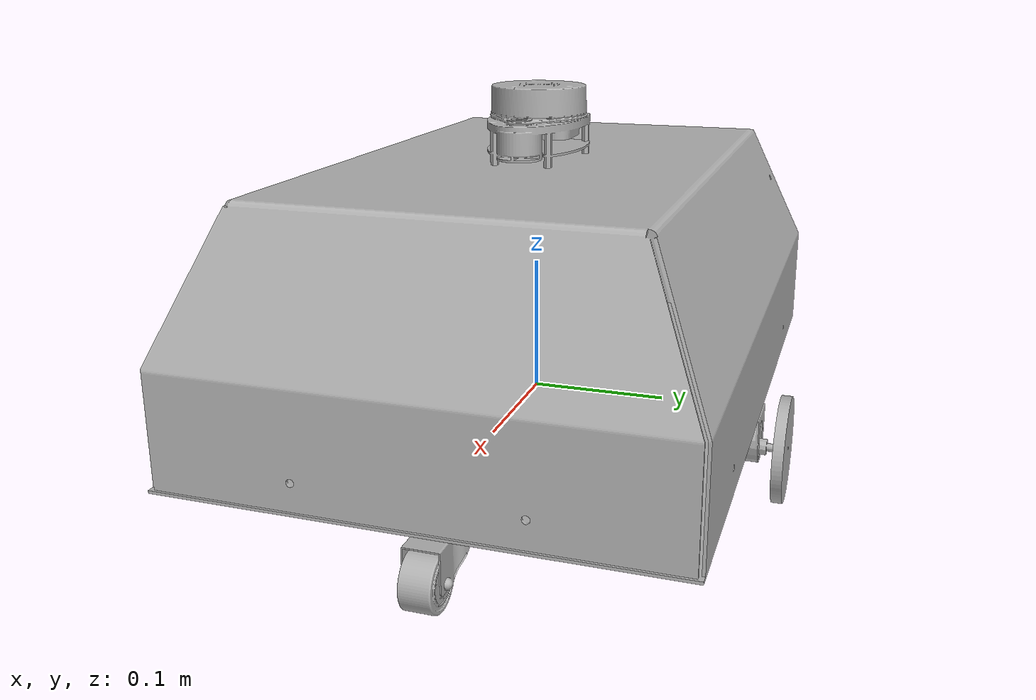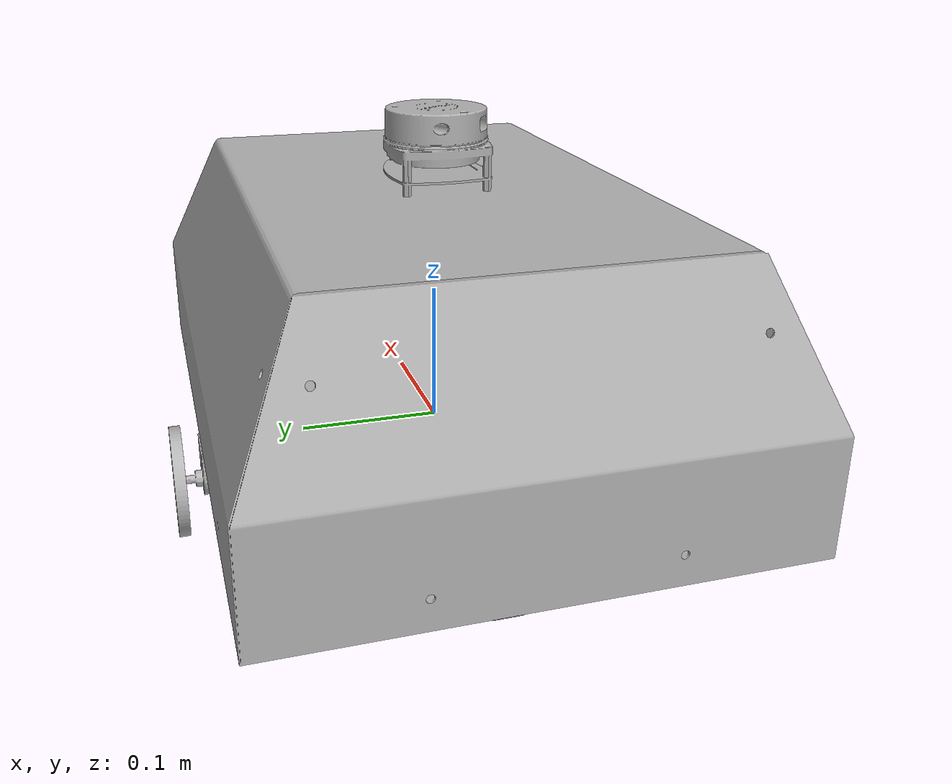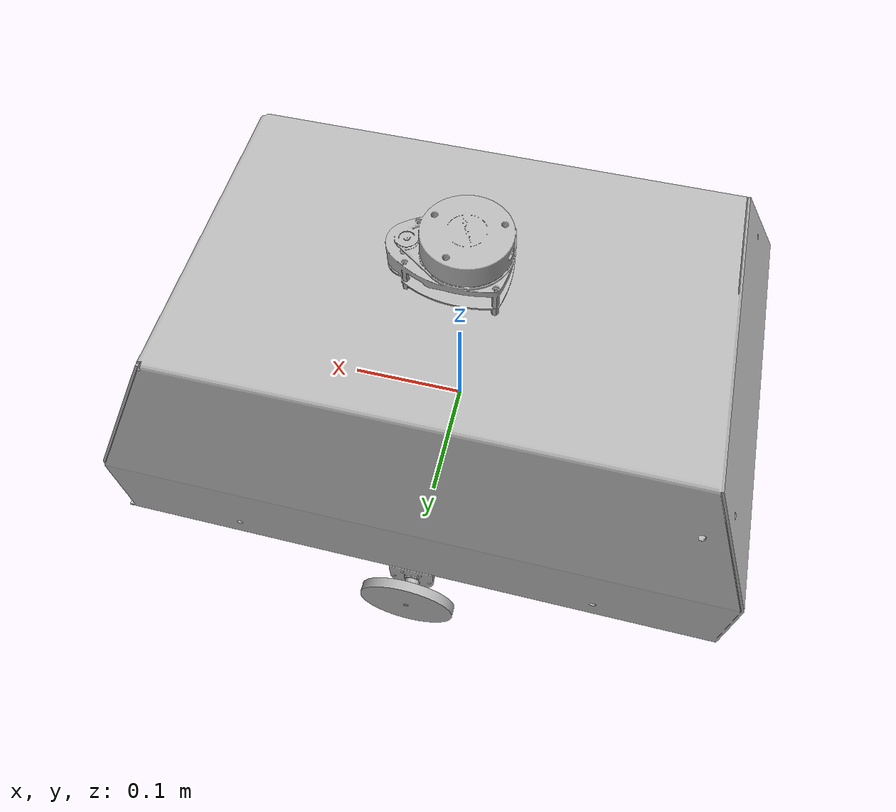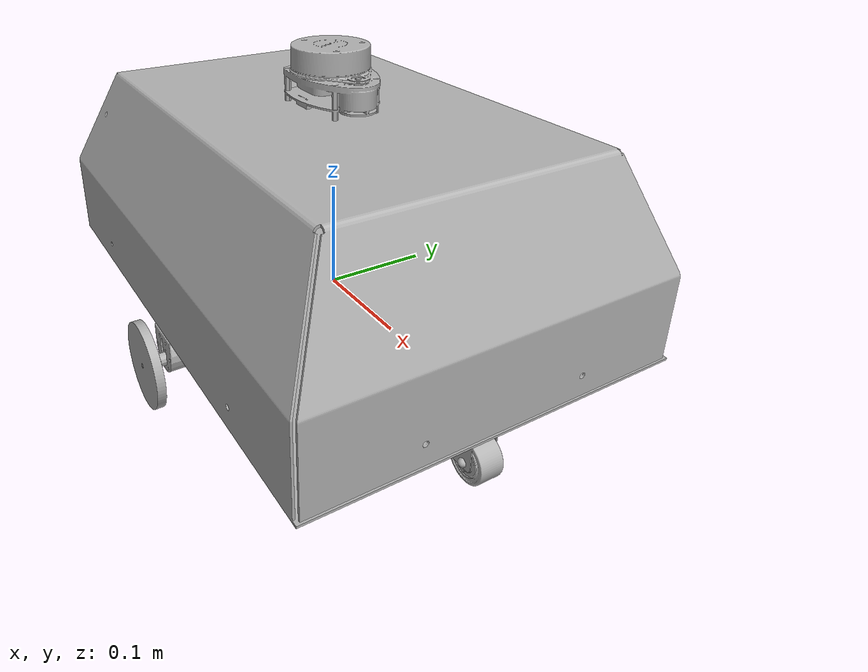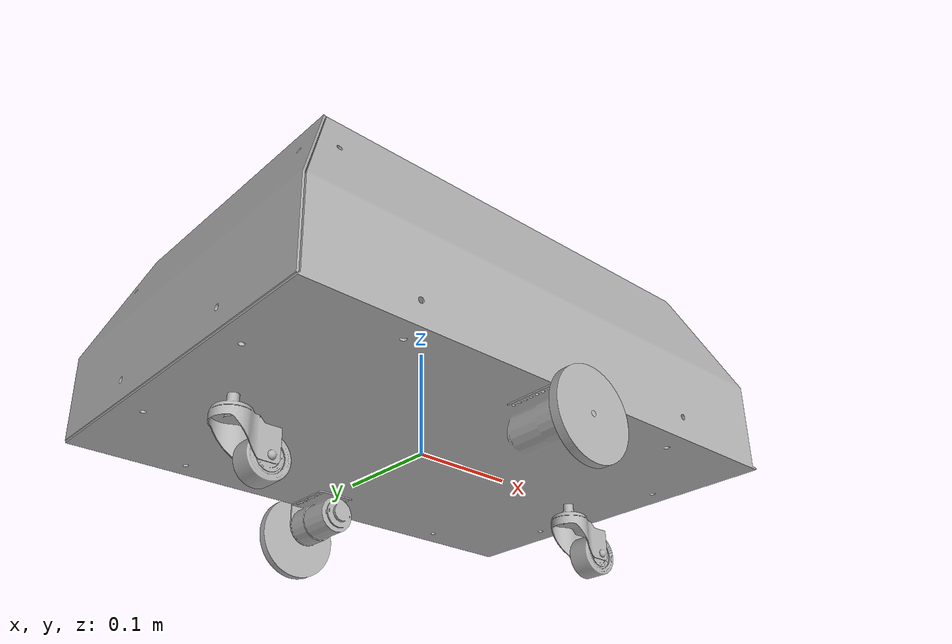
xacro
<?xml version="1.0" ?>
<robot name="caba" xmlns:xacro="http://www.ros.org/wiki/xacro">

<xacro:include filename="$(find caba_description)/urdf/materials.xacro" />
<xacro:include filename="$(find caba_description)/urdf/caba.trans" />
<xacro:include filename="$(find caba_description)/urdf/caba.gazebo" />

<link name="base_link">
  <inertial>
    <origin rpy="0 0 0" xyz="-0.0011847288991747743 7.185810134250719e-11 0.06883632762905934"/>
    <mass value="9.999263199204597"/>
    <inertia ixx="0.203031" ixy="1e-05" ixz="0.000313" iyy="0.297481" iyz="0.0" izz="0.391257"/>
  </inertial>
  <visual>
    <origin rpy="0 0 0" xyz="0 0 0"/>
    <geometry>
      <mesh filename="package://caba_description/meshes/base_link.stl" scale="0.001 0.001 0.001"/>
    </geometry>
    <material name="silver"/>
  </visual>
  <collision>
    <origin rpy="0 0 0" xyz="0 0 0"/>
    <geometry>
      <mesh filename="package://caba_description/meshes/base_link.stl" scale="0.001 0.001 0.001"/>
    </geometry>
  </collision>
</link>

<link name="right_wheel_1">
  <inertial>
    <origin rpy="0 0 0" xyz="2.2861500076694515e-07 0.0040000000000000036 -3.2082938715427556e-08"/>
    <mass value="0.03725143488994098"/>
    <inertia ixx="1.5e-05" ixy="-0.0" ixz="0.0" iyy="3e-05" iyz="0.0" izz="1.5e-05"/>
  </inertial>
  <visual>
    <origin rpy="0 0 0" xyz="-8.5e-05 0.1965 0.029407"/>
    <geometry>
      <mesh filename="package://caba_description/meshes/right_wheel_1.stl" scale="0.001 0.001 0.001"/>
    </geometry>
    <material name="silver"/>
  </visual>
  <collision>
    <origin rpy="0 0 0" xyz="-8.5e-05 0.1965 0.029407"/>
    <geometry>
      <mesh filename="package://caba_description/meshes/right_wheel_1.stl" scale="0.001 0.001 0.001"/>
    </geometry>
  </collision>
</link>

<link name="left_wheel_1">
  <inertial>
    <origin rpy="0 0 0" xyz="-2.2861500079528348e-07 -0.003999999999999976 -3.208293869808032e-08"/>
    <mass value="0.037251434889940996"/>
    <inertia ixx="1.5e-05" ixy="0.0" ixz="0.0" iyy="3e-05" iyz="0.0" izz="1.5e-05"/>
  </inertial>
  <visual>
    <origin rpy="0 0 0" xyz="8.5e-05 -0.1965 0.029407"/>
    <geometry>
      <mesh filename="package://caba_description/meshes/left_wheel_1.stl" scale="0.001 0.001 0.001"/>
    </geometry>
    <material name="silver"/>
  </visual>
  <collision>
    <origin rpy="0 0 0" xyz="8.5e-05 -0.1965 0.029407"/>
    <geometry>
      <mesh filename="package://caba_description/meshes/left_wheel_1.stl" scale="0.001 0.001 0.001"/>
    </geometry>
  </collision>
</link>

<link name="laser">
  <inertial>
    <origin rpy="0 0 0" xyz="0.006854802401513253 -0.0010802476481471532 0.026568901965641684"/>
    <mass value="0.11522595365537097"/>
    <inertia ixx="5.3e-05" ixy="-1e-06" ixz="1.3e-05" iyy="9.5e-05" iyz="1e-06" izz="0.000111"/>
  </inertial>
  <visual>
    <origin rpy="0 0 0" xyz="0.001655 -0.0 -0.179"/>
    <geometry>
      <mesh filename="package://caba_description/meshes/rplidar_1.stl" scale="0.001 0.001 0.001"/>
    </geometry>
    <material name="silver"/>
  </visual>
  <collision>
    <origin rpy="0 0 0" xyz="0.001655 -0.0 -0.179"/>
    <geometry>
      <mesh filename="package://caba_description/meshes/rplidar_1.stl" scale="0.001 0.001 0.001"/>
    </geometry>
  </collision>
</link>

<link name="front_caster_tire_1">
  <inertial>
    <origin rpy="0 0 0" xyz="0.0438567830429589 0.006514756553844138 -0.07349107828745045"/>
    <mass value="0.019114076713434056"/>
    <inertia ixx="5.7e-05" ixy="0.0" ixz="-0.0" iyy="2.3e-05" iyz="0.0" izz="6.3e-05"/>
  </inertial>
  <visual>
    <origin rpy="0 0 0" xyz="-0.221938 -0.011 0.0495"/>
    <geometry>
      <mesh filename="package://caba_description/meshes/front_caster_tire_1.stl" scale="0.001 0.001 0.001"/>
    </geometry>
    <material name="silver"/>
  </visual>
  <collision>
    <origin rpy="0 0 0" xyz="-0.221938 -0.011 0.0495"/>
    <geometry>
      <mesh filename="package://caba_description/meshes/front_caster_tire_1.stl" scale="0.001 0.001 0.001"/>
    </geometry>
  </collision>
</link>

<link name="front_caster_body_1">
  <inertial>
    <origin rpy="0 0 0" xyz="-0.191795 0.0 0.002"/>
    <mass value="0.1"/>
    <inertia ixx="0.0" ixy="0.0" ixz="0.0" iyy="0.0" iyz="0.0" izz="0.0"/>
  </inertial>
  <visual>
    <origin rpy="0 0 0" xyz="-0.191795 -0.0 0.002"/>
    <geometry>
      <mesh filename="package://caba_description/meshes/front_caster_body_1.stl" scale="0.001 0.001 0.001"/>
    </geometry>
    <material name="silver"/>
  </visual>
  <collision>
    <origin rpy="0 0 0" xyz="-0.191795 -0.0 0.002"/>
    <geometry>
      <mesh filename="package://caba_description/meshes/front_caster_body_1.stl" scale="0.001 0.001 0.001"/>
    </geometry>
  </collision>
</link>

<link name="rear_caster_body_1">
  <inertial>
    <origin rpy="0 0 0" xyz="0.201795 0.0 0.002"/>
    <mass value="0.1"/>
    <inertia ixx="0.0" ixy="0.0" ixz="0.0" iyy="0.0" iyz="0.0" izz="0.0"/>
  </inertial>
  <visual>
    <origin rpy="0 0 0" xyz="0.201795 -0.0 0.002"/>
    <geometry>
      <mesh filename="package://caba_description/meshes/rear_caster_body_1.stl" scale="0.001 0.001 0.001"/>
    </geometry>
    <material name="silver"/>
  </visual>
  <collision>
    <origin rpy="0 0 0" xyz="0.201795 -0.0 0.002"/>
    <geometry>
      <mesh filename="package://caba_description/meshes/rear_caster_body_1.stl" scale="0.001 0.001 0.001"/>
    </geometry>
  </collision>
</link>

<link name="rear_caster_tire_1">
  <inertial>
    <origin rpy="0 0 0" xyz="6.873565389642344e-07 -0.010500244051253481 -7.813111250337679e-08"/>
    <mass value="0.019114076713376713"/>
    <inertia ixx="5.7e-05" ixy="0.0" ixz="0.0" iyy="2.3e-05" iyz="-0.0" izz="6.3e-05"/>
  </inertial>
  <visual>
    <origin rpy="0 0 0" xyz="0.171738 -0.011 0.0495"/>
    <geometry>
      <mesh filename="package://caba_description/meshes/rear_caster_tire_1.stl" scale="0.001 0.001 0.001"/>
    </geometry>
    <material name="silver"/>
  </visual>
  <collision>
    <origin rpy="0 0 0" xyz="0.171738 -0.011 0.0495"/>
    <geometry>
      <mesh filename="package://caba_description/meshes/rear_caster_tire_1.stl" scale="0.001 0.001 0.001"/>
    </geometry>
  </collision>
</link>

<joint name="right_wheel_joint" type="continuous">
  <origin rpy="0 0 0" xyz="8.5e-05 -0.1965 -0.029407"/>
  <parent link="base_link"/>
  <child link="right_wheel_1"/>
  <axis xyz="0.0 1.0 0.0"/>
</joint>

<joint name="left_wheel_joint" type="continuous">
  <origin rpy="0 0 0" xyz="-8.5e-05 0.1965 -0.029407"/>
  <parent link="base_link"/>
  <child link="left_wheel_1"/>
  <axis xyz="0.0 1.0 0.0"/>
</joint>

<joint name="lidar_joint" type="fixed">
  <origin rpy="0 0 0" xyz="-0.001655 0.0 0.179"/>
  <parent link="base_link"/>
  <child link="laser"/>
</joint>

<joint name="front_caster_wheel_joint" type="continuous">
  <origin rpy="0 0 0" xyz="0.030057 0.011 -0.0475"/>
  <parent link="front_caster_body_1"/>
  <child link="front_caster_tire_1"/>
  <axis xyz="0.0 1.0 -0.0"/>
</joint>

<joint name="front_caster_body_joint" type="continuous">
  <origin rpy="0 0 0" xyz="0.191795 0.0 -0.001"/>
  <parent link="base_link"/>
  <child link="front_caster_body_1"/>
  <axis xyz="0.0 0.0 1.0"/>
</joint>

<joint name="rear_caster_body_joint" type="continuous">
  <origin rpy="0 0 0" xyz="-0.191795 0.0 -0.001"/>
  <parent link="base_link"/>
  <child link="rear_caster_body_1"/>
  <axis xyz="0.0 0.0 1.0"/>
</joint>

<joint name="rear_caster_wheel_joint" type="continuous">
  <origin rpy="0 0 0" xyz="0.030057 0.011 -0.0475"/>
  <parent link="rear_caster_body_1"/>
  <child link="rear_caster_tire_1"/>
  <axis xyz="-0.0 1.0 0.0"/>
</joint>

</robot>

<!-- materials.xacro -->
<robot name="caba" xmlns:xacro="http://www.ros.org/wiki/xacro" >

<material name="silver">
  <color rgba="0.700 0.700 0.700 1.000"/>
</material>

</robot>

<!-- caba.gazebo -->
<robot name="caba" xmlns:xacro="http://www.ros.org/wiki/xacro" >

<xacro:property name="body_color" value="Gazebo/Gray" />
<xacro:property name="wheel_color" value="Gazebo/Black" />

<gazebo>
  <plugin filename="libgazebo_ros_control.so" name="control"/>
</gazebo>
<gazebo reference="base_link">
  <material>${body_color}</material>
  <mu1>0.2</mu1>
  <mu2>0.2</mu2>
  <selfCollide>true</selfCollide>
  <gravity>true</gravity>
</gazebo>

<gazebo reference="right_wheel_1">
  <material>${wheel_color}</material>
  <mu1>0.2</mu1>
  <mu2>0.2</mu2>
  <selfCollide>true</selfCollide>
</gazebo>

<gazebo reference="left_wheel_1">
  <material>${wheel_color}</material>
  <mu1>0.2</mu1>
  <mu2>0.2</mu2>
  <selfCollide>true</selfCollide>
</gazebo>

<gazebo reference="front_caster_tire_1">
  <material>${body_color}</material>
  <mu1>0.2</mu1>
  <mu2>0.2</mu2>
  <selfCollide>true</selfCollide>
</gazebo>

<gazebo reference="front_caster_body_1">
  <material>${body_color}</material>
  <mu1>0.2</mu1>
  <mu2>0.2</mu2>
  <selfCollide>true</selfCollide>
</gazebo>

<gazebo reference="rear_caster_body_1">
  <material>${body_color}</material>
  <mu1>0.2</mu1>
  <mu2>0.2</mu2>
  <selfCollide>true</selfCollide>
</gazebo>

<gazebo reference="rear_caster_tire_1">
  <material>${body_color}</material>
  <mu1>0.2</mu1>
  <mu2>0.2</mu2>
  <selfCollide>true</selfCollide>
</gazebo>

<gazebo reference="laser">
  <material>Gazebo/FlatBlack</material>
  <sensor type="ray" name="head_hokuyo_sensor">
    <pose>0 0 0 0 0 0</pose>
    <visualize>false</visualize>
    <update_rate>40</update_rate>
    <ray>
      <scan>
        <horizontal>
          <samples>720</samples>
          <resolution>1</resolution>
          <min_angle>-3.14159265</min_angle>
          <max_angle>3.14159265</max_angle>
        </horizontal>
      </scan>
      <range>
        <min>0.2</min>
        <max>12.0</max>
        <resolution>0.01</resolution>
      </range>
      <noise>
        <type>gaussian</type>
        <mean>0.0</mean>
        <stddev>0.01</stddev>
      </noise>
    </ray>
      <plugin name="gazebo_ros_head_hokuyo_controller" filename="libgazebo_ros_laser.so">
      <topicName>/scan</topicName>
      <frameName>laser</frameName>
    </plugin>
  </sensor>
</gazebo>

<gazebo>
    <plugin name="differential_drive_controller" filename="libgazebo_ros_diff_drive.so">
      <rosDebugLevel>na</rosDebugLevel>
      <publishWheelTF>false</publishWheelTF>
      <robotNamespace>/</robotNamespace>
      <publishTf>true</publishTf>
      <publishWheelJointState>true</publishWheelJointState>
      <alwaysOn>true</alwaysOn>
      <updateRate>20.0</updateRate>
      <legacyMode>true</legacyMode>
      <leftJoint>left_wheel_joint</leftJoint>
      <rightJoint>right_wheel_joint</rightJoint>
      <wheelSeparation>0.395</wheelSeparation>
      <wheelDiameter>0.04</wheelDiameter>
      <broadcastTF>1</broadcastTF>
      <wheelTorque>5</wheelTorque>
      <wheelAcceleration>0.3</wheelAcceleration>
      <commandTopic>cmd_vel</commandTopic>
      <odometryFrame>odom</odometryFrame>
      <odometryTopic>odom</odometryTopic>
      <odometrySource>world</odometrySource>
      <robotBaseFrame>base_footprint</robotBaseFrame>
    </plugin>
</gazebo>

</robot>
